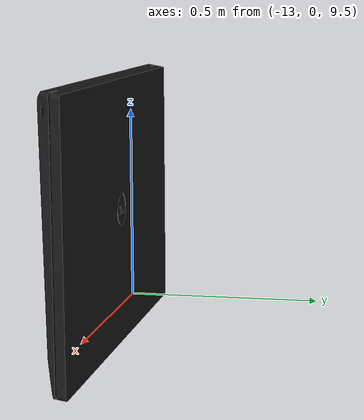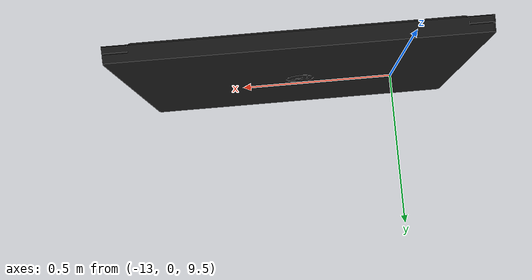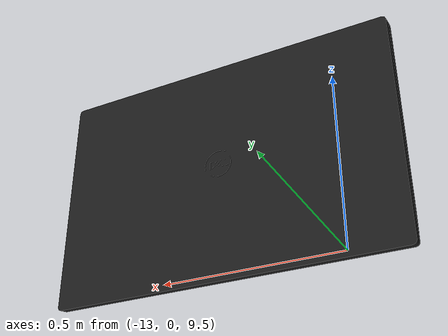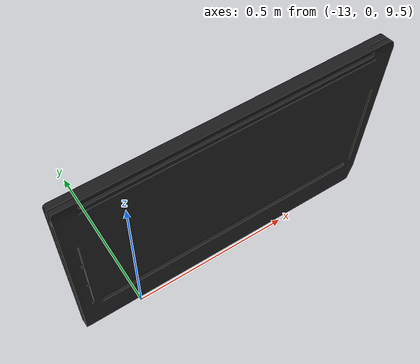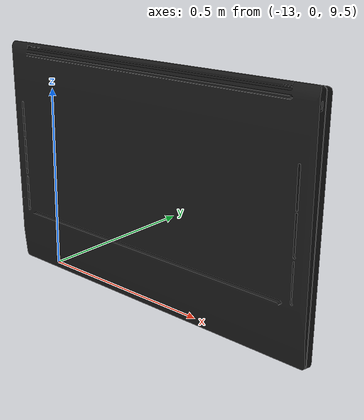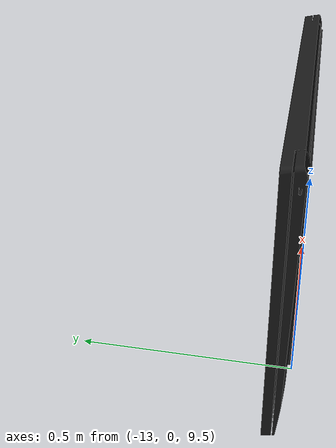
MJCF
<mujoco model="dell">
  <compiler meshdir="./" fitaabb="true" />

  <visual>
    <headlight diffuse="0.6 0.6 0.6" ambient="0.1 0.1 0.1" specular="0 0 0" />
    <rgba haze="0.15 0.25 0.35 1" />
    <global azimuth="120" elevation="-20" />
  </visual>

  <asset>
    <mesh name="dell" file="dell.obj" scale="1 1 1" />

    <!-- Sky -->
    <texture type="skybox" builtin="gradient" rgb1="0.1 0.2 0.3" rgb2="0 0 0" width="512"
      height="3072" />
    <!-- Ground -->
    <texture type="2d" name="groundplane" builtin="checker" mark="edge" rgb1="0.3 0.4 0.5"
      rgb2="0.1 0.2 0.3" markrgb="0.8 0.8 0.8" width="300" height="300" />
    <material name="groundplane" texture="groundplane" texuniform="true" texrepeat="2 2"
      reflectance="0.2" />
  </asset>

  <worldbody>
    <light pos="0 0 3" dir="0 0 -1" directional="true" diffuse="1 1 1" />
    <geom name="floor" size="0 0 0.05" type="plane" material="groundplane" />

    <body name="dell" pos="0 0 2" quat="0 0 1 1" >
      <joint name="dell_free" type="free" />
      <geom mesh="dell" type="mesh" condim="3" contype="1" conaffinity="1" group="2" rgba="0.1 0.1 0.1 1"/>
    </body>
  </worldbody>
</mujoco>
